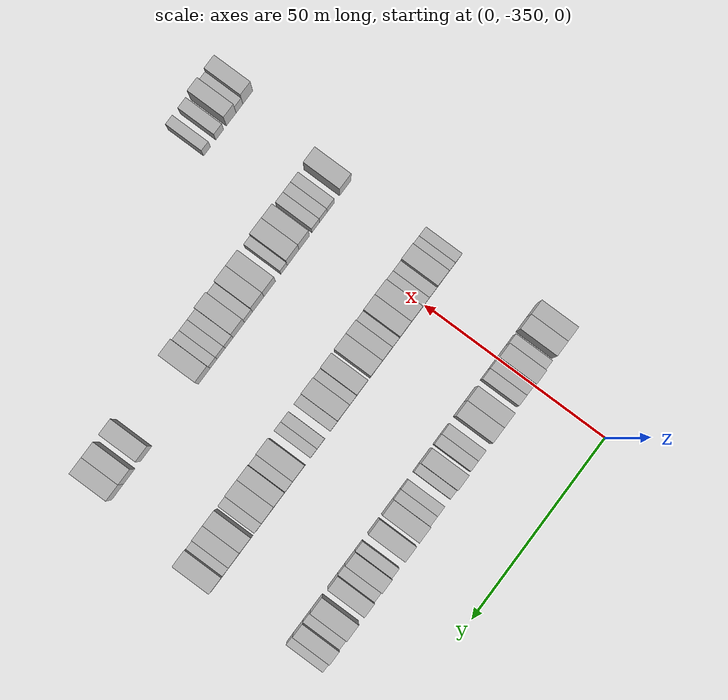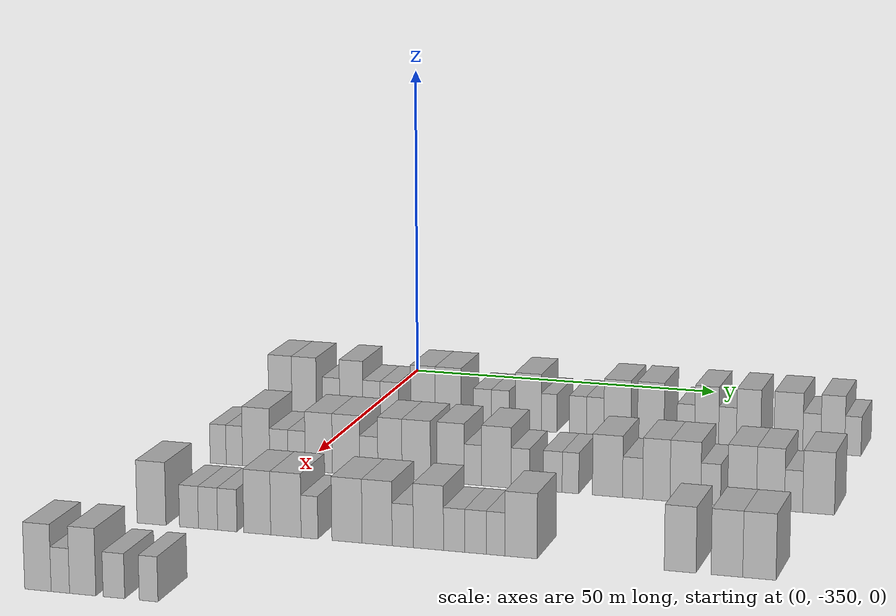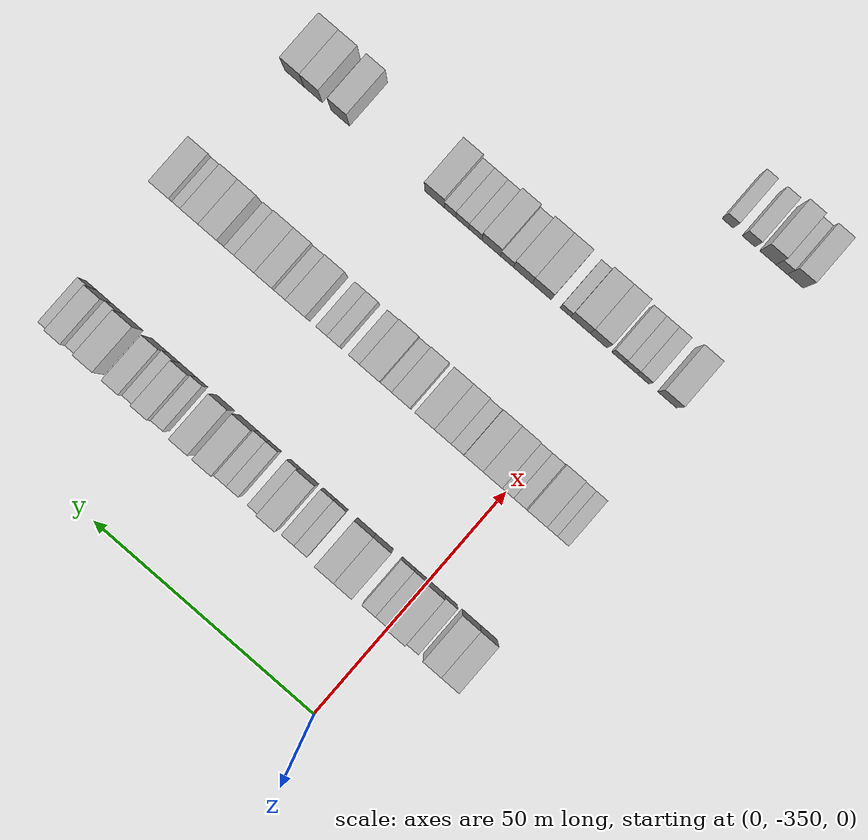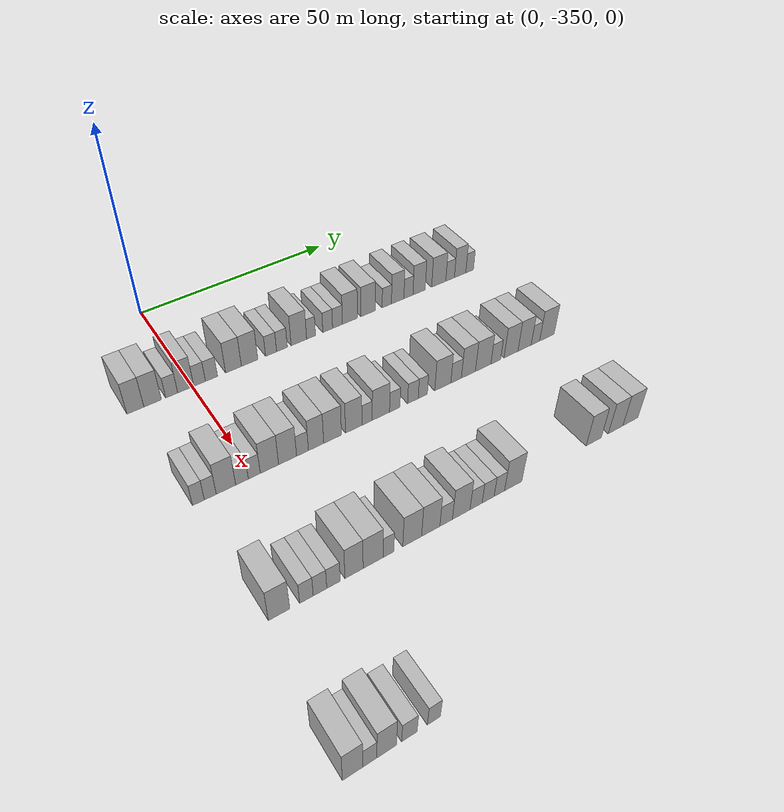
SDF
<sdf version="1.6">
 <world name="default">
  <model name="building_26">
   <static>1</static>
   <pose>25.0000 -363.3292 0 0.000000 0.000000 0.000000</pose>
   <link name="link">
    <pose>0 0 4.50 0 0 0</pose>
    <collision name="collision"><geometry><box><size>10.0000 3.8838 9.0000</size></box></geometry></collision>
    <visual name="visual">
     <cast_shadows>0</cast_shadows>
     <geometry><box><size>10.0000 3.8838 9.0000</size></box></geometry>
     <material>
      <script>
       <uri>model://HANNAS_wall/materials/scripts</uri>
       <uri>model://HANNAS_wall/materials/textures</uri>
       <name>vrc/HANNAS_wall</name>
      </script>
     </material>
    </visual>
   </link>
  </model>
  <model name="building_27">
   <static>1</static>
   <pose>25.0000 -359.3605 0 0.000000 0.000000 0.000000</pose>
   <link name="link">
    <pose>0 0 4.50 0 0 0</pose>
    <collision name="collision"><geometry><box><size>10.0000 4.0535 9.0000</size></box></geometry></collision>
    <visual name="visual">
     <cast_shadows>0</cast_shadows>
     <geometry><box><size>10.0000 4.0535 9.0000</size></box></geometry>
     <material>
      <script>
       <uri>model://HANNAS_wall/materials/scripts</uri>
       <uri>model://HANNAS_wall/materials/textures</uri>
       <name>vrc/HANNAS_wall</name>
      </script>
     </material>
    </visual>
   </link>
  </model>
  <model name="building_28">
   <static>1</static>
   <pose>25.0000 -354.9109 0 0.000000 0.000000 0.000000</pose>
   <link name="link">
    <pose>0 0 3.00 0 0 0</pose>
    <collision name="collision"><geometry><box><size>10.0000 2.8457 6.0000</size></box></geometry></collision>
    <visual name="visual">
     <cast_shadows>0</cast_shadows>
     <geometry><box><size>10.0000 2.8457 6.0000</size></box></geometry>
     <material>
      <script>
       <uri>model://HANNAS_wall/materials/scripts</uri>
       <uri>model://HANNAS_wall/materials/textures</uri>
       <name>vrc/HANNAS_wall</name>
      </script>
     </material>
    </visual>
   </link>
  </model>
  <model name="building_29">
   <static>1</static>
   <pose>25.0000 -351.5719 0 0.000000 0.000000 0.000000</pose>
   <link name="link">
    <pose>0 0 4.50 0 0 0</pose>
    <collision name="collision"><geometry><box><size>10.0000 3.8323 9.0000</size></box></geometry></collision>
    <visual name="visual">
     <cast_shadows>0</cast_shadows>
     <geometry><box><size>10.0000 3.8323 9.0000</size></box></geometry>
     <material>
      <script>
       <uri>model://HANNAS_wall/materials/scripts</uri>
       <uri>model://HANNAS_wall/materials/textures</uri>
       <name>vrc/HANNAS_wall</name>
      </script>
     </material>
    </visual>
   </link>
  </model>
  <model name="building_30">
   <static>1</static>
   <pose>25.0000 -348.2336 0 0.000000 0.000000 0.000000</pose>
   <link name="link">
    <pose>0 0 3.00 0 0 0</pose>
    <collision name="collision"><geometry><box><size>10.0000 2.8442 6.0000</size></box></geometry></collision>
    <visual name="visual">
     <cast_shadows>0</cast_shadows>
     <geometry><box><size>10.0000 2.8442 6.0000</size></box></geometry>
     <material>
      <script>
       <uri>model://HANNAS_wall/materials/scripts</uri>
       <uri>model://HANNAS_wall/materials/textures</uri>
       <name>vrc/HANNAS_wall</name>
      </script>
     </material>
    </visual>
   </link>
  </model>
  <model name="building_31">
   <static>1</static>
   <pose>25.0000 -345.3288 0 0.000000 0.000000 0.000000</pose>
   <link name="link">
    <pose>0 0 3.00 0 0 0</pose>
    <collision name="collision"><geometry><box><size>10.0000 2.9655 6.0000</size></box></geometry></collision>
    <visual name="visual">
     <cast_shadows>0</cast_shadows>
     <geometry><box><size>10.0000 2.9655 6.0000</size></box></geometry>
     <material>
      <script>
       <uri>model://HANNAS_wall/materials/scripts</uri>
       <uri>model://HANNAS_wall/materials/textures</uri>
       <name>vrc/HANNAS_wall</name>
      </script>
     </material>
    </visual>
   </link>
  </model>
  <model name="building_32">
   <static>1</static>
   <pose>25.0000 -339.8580 0 0.000000 0.000000 0.000000</pose>
   <link name="link">
    <pose>0 0 4.50 0 0 0</pose>
    <collision name="collision"><geometry><box><size>10.0000 3.9760 9.0000</size></box></geometry></collision>
    <visual name="visual">
     <cast_shadows>0</cast_shadows>
     <geometry><box><size>10.0000 3.9760 9.0000</size></box></geometry>
     <material>
      <script>
       <uri>model://HANNAS_wall/materials/scripts</uri>
       <uri>model://HANNAS_wall/materials/textures</uri>
       <name>vrc/HANNAS_wall</name>
      </script>
     </material>
    </visual>
   </link>
  </model>
  <model name="building_33">
   <static>1</static>
   <pose>25.0000 -335.7760 0 0.000000 0.000000 0.000000</pose>
   <link name="link">
    <pose>0 0 4.50 0 0 0</pose>
    <collision name="collision"><geometry><box><size>10.0000 4.1880 9.0000</size></box></geometry></collision>
    <visual name="visual">
     <cast_shadows>0</cast_shadows>
     <geometry><box><size>10.0000 4.1880 9.0000</size></box></geometry>
     <material>
      <script>
       <uri>model://HANNAS_wall/materials/scripts</uri>
       <uri>model://HANNAS_wall/materials/textures</uri>
       <name>vrc/HANNAS_wall</name>
      </script>
     </material>
    </visual>
   </link>
  </model>
  <model name="building_34">
   <static>1</static>
   <pose>25.0000 -330.2479 0 0.000000 0.000000 0.000000</pose>
   <link name="link">
    <pose>0 0 3.00 0 0 0</pose>
    <collision name="collision"><geometry><box><size>10.0000 2.8681 6.0000</size></box></geometry></collision>
    <visual name="visual">
     <cast_shadows>0</cast_shadows>
     <geometry><box><size>10.0000 2.8681 6.0000</size></box></geometry>
     <material>
      <script>
       <uri>model://HANNAS_wall/materials/scripts</uri>
       <uri>model://HANNAS_wall/materials/textures</uri>
       <name>vrc/HANNAS_wall</name>
      </script>
     </material>
    </visual>
   </link>
  </model>
  <model name="building_35">
   <static>1</static>
   <pose>25.0000 -327.3983 0 0.000000 0.000000 0.000000</pose>
   <link name="link">
    <pose>0 0 3.00 0 0 0</pose>
    <collision name="collision"><geometry><box><size>10.0000 2.8311 6.0000</size></box></geometry></collision>
    <visual name="visual">
     <cast_shadows>0</cast_shadows>
     <geometry><box><size>10.0000 2.8311 6.0000</size></box></geometry>
     <material>
      <script>
       <uri>model://HANNAS_wall/materials/scripts</uri>
       <uri>model://HANNAS_wall/materials/textures</uri>
       <name>vrc/HANNAS_wall</name>
      </script>
     </material>
    </visual>
   </link>
  </model>
  <model name="building_36">
   <static>1</static>
   <pose>25.0000 -322.9147 0 0.000000 0.000000 0.000000</pose>
   <link name="link">
    <pose>0 0 4.50 0 0 0</pose>
    <collision name="collision"><geometry><box><size>10.0000 4.1361 9.0000</size></box></geometry></collision>
    <visual name="visual">
     <cast_shadows>0</cast_shadows>
     <geometry><box><size>10.0000 4.1361 9.0000</size></box></geometry>
     <material>
      <script>
       <uri>model://HANNAS_wall/materials/scripts</uri>
       <uri>model://HANNAS_wall/materials/textures</uri>
       <name>vrc/HANNAS_wall</name>
      </script>
     </material>
    </visual>
   </link>
  </model>
  <model name="building_37">
   <static>1</static>
   <pose>25.0000 -319.6407 0 0.000000 0.000000 0.000000</pose>
   <link name="link">
    <pose>0 0 3.00 0 0 0</pose>
    <collision name="collision"><geometry><box><size>10.0000 2.4119 6.0000</size></box></geometry></collision>
    <visual name="visual">
     <cast_shadows>0</cast_shadows>
     <geometry><box><size>10.0000 2.4119 6.0000</size></box></geometry>
     <material>
      <script>
       <uri>model://HANNAS_wall/materials/scripts</uri>
       <uri>model://HANNAS_wall/materials/textures</uri>
       <name>vrc/HANNAS_wall</name>
      </script>
     </material>
    </visual>
   </link>
  </model>
  <model name="building_38">
   <static>1</static>
   <pose>25.0000 -315.0857 0 0.000000 0.000000 0.000000</pose>
   <link name="link">
    <pose>0 0 3.00 0 0 0</pose>
    <collision name="collision"><geometry><box><size>10.0000 2.6982 6.0000</size></box></geometry></collision>
    <visual name="visual">
     <cast_shadows>0</cast_shadows>
     <geometry><box><size>10.0000 2.6982 6.0000</size></box></geometry>
     <material>
      <script>
       <uri>model://HANNAS_wall/materials/scripts</uri>
       <uri>model://HANNAS_wall/materials/textures</uri>
       <name>vrc/HANNAS_wall</name>
      </script>
     </material>
    </visual>
   </link>
  </model>
  <model name="building_39">
   <static>1</static>
   <pose>25.0000 -312.3672 0 0.000000 0.000000 0.000000</pose>
   <link name="link">
    <pose>0 0 3.00 0 0 0</pose>
    <collision name="collision"><geometry><box><size>10.0000 2.7387 6.0000</size></box></geometry></collision>
    <visual name="visual">
     <cast_shadows>0</cast_shadows>
     <geometry><box><size>10.0000 2.7387 6.0000</size></box></geometry>
     <material>
      <script>
       <uri>model://HANNAS_wall/materials/scripts</uri>
       <uri>model://HANNAS_wall/materials/textures</uri>
       <name>vrc/HANNAS_wall</name>
      </script>
     </material>
    </visual>
   </link>
  </model>
  <model name="building_40">
   <static>1</static>
   <pose>25.0000 -308.8838 0 0.000000 0.000000 0.000000</pose>
   <link name="link">
    <pose>0 0 4.50 0 0 0</pose>
    <collision name="collision"><geometry><box><size>10.0000 4.2281 9.0000</size></box></geometry></collision>
    <visual name="visual">
     <cast_shadows>0</cast_shadows>
     <geometry><box><size>10.0000 4.2281 9.0000</size></box></geometry>
     <material>
      <script>
       <uri>model://HANNAS_wall/materials/scripts</uri>
       <uri>model://HANNAS_wall/materials/textures</uri>
       <name>vrc/HANNAS_wall</name>
      </script>
     </material>
    </visual>
   </link>
  </model>
  <model name="building_41">
   <static>1</static>
   <pose>25.0000 -303.7014 0 0.000000 0.000000 0.000000</pose>
   <link name="link">
    <pose>0 0 4.50 0 0 0</pose>
    <collision name="collision"><geometry><box><size>10.0000 4.1366 9.0000</size></box></geometry></collision>
    <visual name="visual">
     <cast_shadows>0</cast_shadows>
     <geometry><box><size>10.0000 4.1366 9.0000</size></box></geometry>
     <material>
      <script>
       <uri>model://HANNAS_wall/materials/scripts</uri>
       <uri>model://HANNAS_wall/materials/textures</uri>
       <name>vrc/HANNAS_wall</name>
      </script>
     </material>
    </visual>
   </link>
  </model>
  <model name="building_42">
   <static>1</static>
   <pose>25.0000 -298.2749 0 0.000000 0.000000 0.000000</pose>
   <link name="link">
    <pose>0 0 3.00 0 0 0</pose>
    <collision name="collision"><geometry><box><size>10.0000 2.7165 6.0000</size></box></geometry></collision>
    <visual name="visual">
     <cast_shadows>0</cast_shadows>
     <geometry><box><size>10.0000 2.7165 6.0000</size></box></geometry>
     <material>
      <script>
       <uri>model://HANNAS_wall/materials/scripts</uri>
       <uri>model://HANNAS_wall/materials/textures</uri>
       <name>vrc/HANNAS_wall</name>
      </script>
     </material>
    </visual>
   </link>
  </model>
  <model name="building_43">
   <static>1</static>
   <pose>25.0000 -295.0676 0 0.000000 0.000000 0.000000</pose>
   <link name="link">
    <pose>0 0 4.50 0 0 0</pose>
    <collision name="collision"><geometry><box><size>10.0000 3.6980 9.0000</size></box></geometry></collision>
    <visual name="visual">
     <cast_shadows>0</cast_shadows>
     <geometry><box><size>10.0000 3.6980 9.0000</size></box></geometry>
     <material>
      <script>
       <uri>model://HANNAS_wall/materials/scripts</uri>
       <uri>model://HANNAS_wall/materials/textures</uri>
       <name>vrc/HANNAS_wall</name>
      </script>
     </material>
    </visual>
   </link>
  </model>
  <model name="building_44">
   <static>1</static>
   <pose>25.0000 -291.8592 0 0.000000 0.000000 0.000000</pose>
   <link name="link">
    <pose>0 0 3.00 0 0 0</pose>
    <collision name="collision"><geometry><box><size>10.0000 2.7188 6.0000</size></box></geometry></collision>
    <visual name="visual">
     <cast_shadows>0</cast_shadows>
     <geometry><box><size>10.0000 2.7188 6.0000</size></box></geometry>
     <material>
      <script>
       <uri>model://HANNAS_wall/materials/scripts</uri>
       <uri>model://HANNAS_wall/materials/textures</uri>
       <name>vrc/HANNAS_wall</name>
      </script>
     </material>
    </visual>
   </link>
  </model>
  <model name="building_45">
   <static>1</static>
   <pose>25.0000 -288.6436 0 0.000000 0.000000 0.000000</pose>
   <link name="link">
    <pose>0 0 4.50 0 0 0</pose>
    <collision name="collision"><geometry><box><size>10.0000 3.7125 9.0000</size></box></geometry></collision>
    <visual name="visual">
     <cast_shadows>0</cast_shadows>
     <geometry><box><size>10.0000 3.7125 9.0000</size></box></geometry>
     <material>
      <script>
       <uri>model://HANNAS_wall/materials/scripts</uri>
       <uri>model://HANNAS_wall/materials/textures</uri>
       <name>vrc/HANNAS_wall</name>
      </script>
     </material>
    </visual>
   </link>
  </model>
  <model name="building_46">
   <static>1</static>
   <pose>25.0000 -282.5983 0 0.000000 0.000000 0.000000</pose>
   <link name="link">
    <pose>0 0 4.50 0 0 0</pose>
    <collision name="collision"><geometry><box><size>10.0000 4.3780 9.0000</size></box></geometry></collision>
    <visual name="visual">
     <cast_shadows>0</cast_shadows>
     <geometry><box><size>10.0000 4.3780 9.0000</size></box></geometry>
     <material>
      <script>
       <uri>model://HANNAS_wall/materials/scripts</uri>
       <uri>model://HANNAS_wall/materials/textures</uri>
       <name>vrc/HANNAS_wall</name>
      </script>
     </material>
    </visual>
   </link>
  </model>
  <model name="building_47">
   <static>1</static>
   <pose>25.0000 -279.0557 0 0.000000 0.000000 0.000000</pose>
   <link name="link">
    <pose>0 0 3.00 0 0 0</pose>
    <collision name="collision"><geometry><box><size>10.0000 2.7072 6.0000</size></box></geometry></collision>
    <visual name="visual">
     <cast_shadows>0</cast_shadows>
     <geometry><box><size>10.0000 2.7072 6.0000</size></box></geometry>
     <material>
      <script>
       <uri>model://HANNAS_wall/materials/scripts</uri>
       <uri>model://HANNAS_wall/materials/textures</uri>
       <name>vrc/HANNAS_wall</name>
      </script>
     </material>
    </visual>
   </link>
  </model>
  <model name="building_48">
   <static>1</static>
   <pose>25.0000 -275.8993 0 0.000000 0.000000 0.000000</pose>
   <link name="link">
    <pose>0 0 4.50 0 0 0</pose>
    <collision name="collision"><geometry><box><size>10.0000 3.6057 9.0000</size></box></geometry></collision>
    <visual name="visual">
     <cast_shadows>0</cast_shadows>
     <geometry><box><size>10.0000 3.6057 9.0000</size></box></geometry>
     <material>
      <script>
       <uri>model://HANNAS_wall/materials/scripts</uri>
       <uri>model://HANNAS_wall/materials/textures</uri>
       <name>vrc/HANNAS_wall</name>
      </script>
     </material>
    </visual>
   </link>
  </model>
  <model name="building_49">
   <static>1</static>
   <pose>25.0000 -272.8682 0 0.000000 0.000000 0.000000</pose>
   <link name="link">
    <pose>0 0 3.00 0 0 0</pose>
    <collision name="collision"><geometry><box><size>10.0000 2.4565 6.0000</size></box></geometry></collision>
    <visual name="visual">
     <cast_shadows>0</cast_shadows>
     <geometry><box><size>10.0000 2.4565 6.0000</size></box></geometry>
     <material>
      <script>
       <uri>model://HANNAS_wall/materials/scripts</uri>
       <uri>model://HANNAS_wall/materials/textures</uri>
       <name>vrc/HANNAS_wall</name>
      </script>
     </material>
    </visual>
   </link>
  </model>
  <model name="building_250">
   <static>1</static>
   <pose>55.0000 -362.2502 0 0.000000 0.000000 0.000000</pose>
   <link name="link">
    <pose>0 0 3.00 0 0 0</pose>
    <collision name="collision"><geometry><box><size>10.0000 2.5259 6.0000</size></box></geometry></collision>
    <visual name="visual">
     <cast_shadows>0</cast_shadows>
     <geometry><box><size>10.0000 2.5259 6.0000</size></box></geometry>
     <material>
      <script>
       <uri>model://HANNAS_wall/materials/scripts</uri>
       <uri>model://HANNAS_wall/materials/textures</uri>
       <name>vrc/HANNAS_wall</name>
      </script>
     </material>
    </visual>
   </link>
  </model>
  <model name="building_251">
   <static>1</static>
   <pose>55.0000 -359.7041 0 0.000000 0.000000 0.000000</pose>
   <link name="link">
    <pose>0 0 3.00 0 0 0</pose>
    <collision name="collision"><geometry><box><size>10.0000 2.5663 6.0000</size></box></geometry></collision>
    <visual name="visual">
     <cast_shadows>0</cast_shadows>
     <geometry><box><size>10.0000 2.5663 6.0000</size></box></geometry>
     <material>
      <script>
       <uri>model://HANNAS_wall/materials/scripts</uri>
       <uri>model://HANNAS_wall/materials/textures</uri>
       <name>vrc/HANNAS_wall</name>
      </script>
     </material>
    </visual>
   </link>
  </model>
  <model name="building_252">
   <static>1</static>
   <pose>55.0000 -356.2911 0 0.000000 0.000000 0.000000</pose>
   <link name="link">
    <pose>0 0 4.50 0 0 0</pose>
    <collision name="collision"><geometry><box><size>10.0000 4.2596 9.0000</size></box></geometry></collision>
    <visual name="visual">
     <cast_shadows>0</cast_shadows>
     <geometry><box><size>10.0000 4.2596 9.0000</size></box></geometry>
     <material>
      <script>
       <uri>model://HANNAS_wall/materials/scripts</uri>
       <uri>model://HANNAS_wall/materials/textures</uri>
       <name>vrc/HANNAS_wall</name>
      </script>
     </material>
    </visual>
   </link>
  </model>
  <model name="building_253">
   <static>1</static>
   <pose>55.0000 -352.7507 0 0.000000 0.000000 0.000000</pose>
   <link name="link">
    <pose>0 0 3.00 0 0 0</pose>
    <collision name="collision"><geometry><box><size>10.0000 2.8212 6.0000</size></box></geometry></collision>
    <visual name="visual">
     <cast_shadows>0</cast_shadows>
     <geometry><box><size>10.0000 2.8212 6.0000</size></box></geometry>
     <material>
      <script>
       <uri>model://HANNAS_wall/materials/scripts</uri>
       <uri>model://HANNAS_wall/materials/textures</uri>
       <name>vrc/HANNAS_wall</name>
      </script>
     </material>
    </visual>
   </link>
  </model>
  <model name="building_254">
   <static>1</static>
   <pose>55.0000 -349.9970 0 0.000000 0.000000 0.000000</pose>
   <link name="link">
    <pose>0 0 3.00 0 0 0</pose>
    <collision name="collision"><geometry><box><size>10.0000 2.6863 6.0000</size></box></geometry></collision>
    <visual name="visual">
     <cast_shadows>0</cast_shadows>
     <geometry><box><size>10.0000 2.6863 6.0000</size></box></geometry>
     <material>
      <script>
       <uri>model://HANNAS_wall/materials/scripts</uri>
       <uri>model://HANNAS_wall/materials/textures</uri>
       <name>vrc/HANNAS_wall</name>
      </script>
     </material>
    </visual>
   </link>
  </model>
  <model name="building_255">
   <static>1</static>
   <pose>55.0000 -346.5590 0 0.000000 0.000000 0.000000</pose>
   <link name="link">
    <pose>0 0 4.50 0 0 0</pose>
    <collision name="collision"><geometry><box><size>10.0000 4.1896 9.0000</size></box></geometry></collision>
    <visual name="visual">
     <cast_shadows>0</cast_shadows>
     <geometry><box><size>10.0000 4.1896 9.0000</size></box></geometry>
     <material>
      <script>
       <uri>model://HANNAS_wall/materials/scripts</uri>
       <uri>model://HANNAS_wall/materials/textures</uri>
       <name>vrc/HANNAS_wall</name>
      </script>
     </material>
    </visual>
   </link>
  </model>
  <model name="building_256">
   <static>1</static>
   <pose>55.0000 -342.3733 0 0.000000 0.000000 0.000000</pose>
   <link name="link">
    <pose>0 0 4.50 0 0 0</pose>
    <collision name="collision"><geometry><box><size>10.0000 4.1818 9.0000</size></box></geometry></collision>
    <visual name="visual">
     <cast_shadows>0</cast_shadows>
     <geometry><box><size>10.0000 4.1818 9.0000</size></box></geometry>
     <material>
      <script>
       <uri>model://HANNAS_wall/materials/scripts</uri>
       <uri>model://HANNAS_wall/materials/textures</uri>
       <name>vrc/HANNAS_wall</name>
      </script>
     </material>
    </visual>
   </link>
  </model>
  <model name="building_257">
   <static>1</static>
   <pose>55.0000 -338.8867 0 0.000000 0.000000 0.000000</pose>
   <link name="link">
    <pose>0 0 3.00 0 0 0</pose>
    <collision name="collision"><geometry><box><size>10.0000 2.7914 6.0000</size></box></geometry></collision>
    <visual name="visual">
     <cast_shadows>0</cast_shadows>
     <geometry><box><size>10.0000 2.7914 6.0000</size></box></geometry>
     <material>
      <script>
       <uri>model://HANNAS_wall/materials/scripts</uri>
       <uri>model://HANNAS_wall/materials/textures</uri>
       <name>vrc/HANNAS_wall</name>
      </script>
     </material>
    </visual>
   </link>
  </model>
  <model name="building_258">
   <static>1</static>
   <pose>55.0000 -335.6544 0 0.000000 0.000000 0.000000</pose>
   <link name="link">
    <pose>0 0 4.50 0 0 0</pose>
    <collision name="collision"><geometry><box><size>10.0000 3.6732 9.0000</size></box></geometry></collision>
    <visual name="visual">
     <cast_shadows>0</cast_shadows>
     <geometry><box><size>10.0000 3.6732 9.0000</size></box></geometry>
     <material>
      <script>
       <uri>model://HANNAS_wall/materials/scripts</uri>
       <uri>model://HANNAS_wall/materials/textures</uri>
       <name>vrc/HANNAS_wall</name>
      </script>
     </material>
    </visual>
   </link>
  </model>
  <model name="building_259">
   <static>1</static>
   <pose>55.0000 -331.6595 0 0.000000 0.000000 0.000000</pose>
   <link name="link">
    <pose>0 0 4.50 0 0 0</pose>
    <collision name="collision"><geometry><box><size>10.0000 4.3166 9.0000</size></box></geometry></collision>
    <visual name="visual">
     <cast_shadows>0</cast_shadows>
     <geometry><box><size>10.0000 4.3166 9.0000</size></box></geometry>
     <material>
      <script>
       <uri>model://HANNAS_wall/materials/scripts</uri>
       <uri>model://HANNAS_wall/materials/textures</uri>
       <name>vrc/HANNAS_wall</name>
      </script>
     </material>
    </visual>
   </link>
  </model>
  <model name="building_260">
   <static>1</static>
   <pose>55.0000 -326.4647 0 0.000000 0.000000 0.000000</pose>
   <link name="link">
    <pose>0 0 4.50 0 0 0</pose>
    <collision name="collision"><geometry><box><size>10.0000 4.0730 9.0000</size></box></geometry></collision>
    <visual name="visual">
     <cast_shadows>0</cast_shadows>
     <geometry><box><size>10.0000 4.0730 9.0000</size></box></geometry>
     <material>
      <script>
       <uri>model://HANNAS_wall/materials/scripts</uri>
       <uri>model://HANNAS_wall/materials/textures</uri>
       <name>vrc/HANNAS_wall</name>
      </script>
     </material>
    </visual>
   </link>
  </model>
  <model name="building_261">
   <static>1</static>
   <pose>55.0000 -323.1159 0 0.000000 0.000000 0.000000</pose>
   <link name="link">
    <pose>0 0 3.00 0 0 0</pose>
    <collision name="collision"><geometry><box><size>10.0000 2.6246 6.0000</size></box></geometry></collision>
    <visual name="visual">
     <cast_shadows>0</cast_shadows>
     <geometry><box><size>10.0000 2.6246 6.0000</size></box></geometry>
     <material>
      <script>
       <uri>model://HANNAS_wall/materials/scripts</uri>
       <uri>model://HANNAS_wall/materials/textures</uri>
       <name>vrc/HANNAS_wall</name>
      </script>
     </material>
    </visual>
   </link>
  </model>
  <model name="building_262">
   <static>1</static>
   <pose>55.0000 -319.5897 0 0.000000 0.000000 0.000000</pose>
   <link name="link">
    <pose>0 0 4.50 0 0 0</pose>
    <collision name="collision"><geometry><box><size>10.0000 4.4278 9.0000</size></box></geometry></collision>
    <visual name="visual">
     <cast_shadows>0</cast_shadows>
     <geometry><box><size>10.0000 4.4278 9.0000</size></box></geometry>
     <material>
      <script>
       <uri>model://HANNAS_wall/materials/scripts</uri>
       <uri>model://HANNAS_wall/materials/textures</uri>
       <name>vrc/HANNAS_wall</name>
      </script>
     </material>
    </visual>
   </link>
  </model>
  <model name="building_263">
   <static>1</static>
   <pose>55.0000 -316.0207 0 0.000000 0.000000 0.000000</pose>
   <link name="link">
    <pose>0 0 3.00 0 0 0</pose>
    <collision name="collision"><geometry><box><size>10.0000 2.7102 6.0000</size></box></geometry></collision>
    <visual name="visual">
     <cast_shadows>0</cast_shadows>
     <geometry><box><size>10.0000 2.7102 6.0000</size></box></geometry>
     <material>
      <script>
       <uri>model://HANNAS_wall/materials/scripts</uri>
       <uri>model://HANNAS_wall/materials/textures</uri>
       <name>vrc/HANNAS_wall</name>
      </script>
     </material>
    </visual>
   </link>
  </model>
  <model name="building_264">
   <static>1</static>
   <pose>55.0000 -311.2551 0 0.000000 0.000000 0.000000</pose>
   <link name="link">
    <pose>0 0 3.00 0 0 0</pose>
    <collision name="collision"><geometry><box><size>10.0000 2.8209 6.0000</size></box></geometry></collision>
    <visual name="visual">
     <cast_shadows>0</cast_shadows>
     <geometry><box><size>10.0000 2.8209 6.0000</size></box></geometry>
     <material>
      <script>
       <uri>model://HANNAS_wall/materials/scripts</uri>
       <uri>model://HANNAS_wall/materials/textures</uri>
       <name>vrc/HANNAS_wall</name>
      </script>
     </material>
    </visual>
   </link>
  </model>
  <model name="building_265">
   <static>1</static>
   <pose>55.0000 -308.6192 0 0.000000 0.000000 0.000000</pose>
   <link name="link">
    <pose>0 0 3.00 0 0 0</pose>
    <collision name="collision"><geometry><box><size>10.0000 2.4509 6.0000</size></box></geometry></collision>
    <visual name="visual">
     <cast_shadows>0</cast_shadows>
     <geometry><box><size>10.0000 2.4509 6.0000</size></box></geometry>
     <material>
      <script>
       <uri>model://HANNAS_wall/materials/scripts</uri>
       <uri>model://HANNAS_wall/materials/textures</uri>
       <name>vrc/HANNAS_wall</name>
      </script>
     </material>
    </visual>
   </link>
  </model>
  <model name="building_266">
   <static>1</static>
   <pose>55.0000 -303.1925 0 0.000000 0.000000 0.000000</pose>
   <link name="link">
    <pose>0 0 4.50 0 0 0</pose>
    <collision name="collision"><geometry><box><size>10.0000 4.4025 9.0000</size></box></geometry></collision>
    <visual name="visual">
     <cast_shadows>0</cast_shadows>
     <geometry><box><size>10.0000 4.4025 9.0000</size></box></geometry>
     <material>
      <script>
       <uri>model://HANNAS_wall/materials/scripts</uri>
       <uri>model://HANNAS_wall/materials/textures</uri>
       <name>vrc/HANNAS_wall</name>
      </script>
     </material>
    </visual>
   </link>
  </model>
  <model name="building_267">
   <static>1</static>
   <pose>55.0000 -299.5221 0 0.000000 0.000000 0.000000</pose>
   <link name="link">
    <pose>0 0 3.00 0 0 0</pose>
    <collision name="collision"><geometry><box><size>10.0000 2.9384 6.0000</size></box></geometry></collision>
    <visual name="visual">
     <cast_shadows>0</cast_shadows>
     <geometry><box><size>10.0000 2.9384 6.0000</size></box></geometry>
     <material>
      <script>
       <uri>model://HANNAS_wall/materials/scripts</uri>
       <uri>model://HANNAS_wall/materials/textures</uri>
       <name>vrc/HANNAS_wall</name>
      </script>
     </material>
    </visual>
   </link>
  </model>
  <model name="building_268">
   <static>1</static>
   <pose>55.0000 -296.0780 0 0.000000 0.000000 0.000000</pose>
   <link name="link">
    <pose>0 0 4.50 0 0 0</pose>
    <collision name="collision"><geometry><box><size>10.0000 3.9498 9.0000</size></box></geometry></collision>
    <visual name="visual">
     <cast_shadows>0</cast_shadows>
     <geometry><box><size>10.0000 3.9498 9.0000</size></box></geometry>
     <material>
      <script>
       <uri>model://HANNAS_wall/materials/scripts</uri>
       <uri>model://HANNAS_wall/materials/textures</uri>
       <name>vrc/HANNAS_wall</name>
      </script>
     </material>
    </visual>
   </link>
  </model>
  <model name="building_269">
   <static>1</static>
   <pose>55.0000 -291.8890 0 0.000000 0.000000 0.000000</pose>
   <link name="link">
    <pose>0 0 4.50 0 0 0</pose>
    <collision name="collision"><geometry><box><size>10.0000 4.4281 9.0000</size></box></geometry></collision>
    <visual name="visual">
     <cast_shadows>0</cast_shadows>
     <geometry><box><size>10.0000 4.4281 9.0000</size></box></geometry>
     <material>
      <script>
       <uri>model://HANNAS_wall/materials/scripts</uri>
       <uri>model://HANNAS_wall/materials/textures</uri>
       <name>vrc/HANNAS_wall</name>
      </script>
     </material>
    </visual>
   </link>
  </model>
  <model name="building_270">
   <static>1</static>
   <pose>55.0000 -288.2566 0 0.000000 0.000000 0.000000</pose>
   <link name="link">
    <pose>0 0 3.00 0 0 0</pose>
    <collision name="collision"><geometry><box><size>10.0000 2.8367 6.0000</size></box></geometry></collision>
    <visual name="visual">
     <cast_shadows>0</cast_shadows>
     <geometry><box><size>10.0000 2.8367 6.0000</size></box></geometry>
     <material>
      <script>
       <uri>model://HANNAS_wall/materials/scripts</uri>
       <uri>model://HANNAS_wall/materials/textures</uri>
       <name>vrc/HANNAS_wall</name>
      </script>
     </material>
    </visual>
   </link>
  </model>
  <model name="building_271">
   <static>1</static>
   <pose>55.0000 -283.7793 0 0.000000 0.000000 0.000000</pose>
   <link name="link">
    <pose>0 0 4.50 0 0 0</pose>
    <collision name="collision"><geometry><box><size>10.0000 4.1179 9.0000</size></box></geometry></collision>
    <visual name="visual">
     <cast_shadows>0</cast_shadows>
     <geometry><box><size>10.0000 4.1179 9.0000</size></box></geometry>
     <material>
      <script>
       <uri>model://HANNAS_wall/materials/scripts</uri>
       <uri>model://HANNAS_wall/materials/textures</uri>
       <name>vrc/HANNAS_wall</name>
      </script>
     </material>
    </visual>
   </link>
  </model>
  <model name="building_272">
   <static>1</static>
   <pose>55.0000 -279.7332 0 0.000000 0.000000 0.000000</pose>
   <link name="link">
    <pose>0 0 4.50 0 0 0</pose>
    <collision name="collision"><geometry><box><size>10.0000 3.9741 9.0000</size></box></geometry></collision>
    <visual name="visual">
     <cast_shadows>0</cast_shadows>
     <geometry><box><size>10.0000 3.9741 9.0000</size></box></geometry>
     <material>
      <script>
       <uri>model://HANNAS_wall/materials/scripts</uri>
       <uri>model://HANNAS_wall/materials/textures</uri>
       <name>vrc/HANNAS_wall</name>
      </script>
     </material>
    </visual>
   </link>
  </model>
  <model name="building_273">
   <static>1</static>
   <pose>55.0000 -276.4646 0 0.000000 0.000000 0.000000</pose>
   <link name="link">
    <pose>0 0 3.00 0 0 0</pose>
    <collision name="collision"><geometry><box><size>10.0000 2.5632 6.0000</size></box></geometry></collision>
    <visual name="visual">
     <cast_shadows>0</cast_shadows>
     <geometry><box><size>10.0000 2.5632 6.0000</size></box></geometry>
     <material>
      <script>
       <uri>model://HANNAS_wall/materials/scripts</uri>
       <uri>model://HANNAS_wall/materials/textures</uri>
       <name>vrc/HANNAS_wall</name>
      </script>
     </material>
    </visual>
   </link>
  </model>
  <model name="building_274">
   <static>1</static>
   <pose>55.0000 -272.9430 0 0.000000 0.000000 0.000000</pose>
   <link name="link">
    <pose>0 0 4.50 0 0 0</pose>
    <collision name="collision"><geometry><box><size>10.0000 4.4800 9.0000</size></box></geometry></collision>
    <visual name="visual">
     <cast_shadows>0</cast_shadows>
     <geometry><box><size>10.0000 4.4800 9.0000</size></box></geometry>
     <material>
      <script>
       <uri>model://HANNAS_wall/materials/scripts</uri>
       <uri>model://HANNAS_wall/materials/textures</uri>
       <name>vrc/HANNAS_wall</name>
      </script>
     </material>
    </visual>
   </link>
  </model>
  <model name="building_478">
   <static>1</static>
   <pose>85.0000 -360.5537 0 0.000000 0.000000 0.000000</pose>
   <link name="link">
    <pose>0 0 4.50 0 0 0</pose>
    <collision name="collision"><geometry><box><size>10.0000 4.2747 9.0000</size></box></geometry></collision>
    <visual name="visual">
     <cast_shadows>0</cast_shadows>
     <geometry><box><size>10.0000 4.2747 9.0000</size></box></geometry>
     <material>
      <script>
       <uri>model://HANNAS_wall/materials/scripts</uri>
       <uri>model://HANNAS_wall/materials/textures</uri>
       <name>vrc/HANNAS_wall</name>
      </script>
     </material>
    </visual>
   </link>
  </model>
  <model name="building_479">
   <static>1</static>
   <pose>85.0000 -355.0271 0 0.000000 0.000000 0.000000</pose>
   <link name="link">
    <pose>0 0 3.00 0 0 0</pose>
    <collision name="collision"><geometry><box><size>10.0000 2.7785 6.0000</size></box></geometry></collision>
    <visual name="visual">
     <cast_shadows>0</cast_shadows>
     <geometry><box><size>10.0000 2.7785 6.0000</size></box></geometry>
     <material>
      <script>
       <uri>model://HANNAS_wall/materials/scripts</uri>
       <uri>model://HANNAS_wall/materials/textures</uri>
       <name>vrc/HANNAS_wall</name>
      </script>
     </material>
    </visual>
   </link>
  </model>
  <model name="building_480">
   <static>1</static>
   <pose>85.0000 -352.2359 0 0.000000 0.000000 0.000000</pose>
   <link name="link">
    <pose>0 0 3.00 0 0 0</pose>
    <collision name="collision"><geometry><box><size>10.0000 2.8039 6.0000</size></box></geometry></collision>
    <visual name="visual">
     <cast_shadows>0</cast_shadows>
     <geometry><box><size>10.0000 2.8039 6.0000</size></box></geometry>
     <material>
      <script>
       <uri>model://HANNAS_wall/materials/scripts</uri>
       <uri>model://HANNAS_wall/materials/textures</uri>
       <name>vrc/HANNAS_wall</name>
      </script>
     </material>
    </visual>
   </link>
  </model>
  <model name="building_481">
   <static>1</static>
   <pose>85.0000 -349.4204 0 0.000000 0.000000 0.000000</pose>
   <link name="link">
    <pose>0 0 3.00 0 0 0</pose>
    <collision name="collision"><geometry><box><size>10.0000 2.8273 6.0000</size></box></geometry></collision>
    <visual name="visual">
     <cast_shadows>0</cast_shadows>
     <geometry><box><size>10.0000 2.8273 6.0000</size></box></geometry>
     <material>
      <script>
       <uri>model://HANNAS_wall/materials/scripts</uri>
       <uri>model://HANNAS_wall/materials/textures</uri>
       <name>vrc/HANNAS_wall</name>
      </script>
     </material>
    </visual>
   </link>
  </model>
  <model name="building_482">
   <static>1</static>
   <pose>85.0000 -345.0548 0 0.000000 0.000000 0.000000</pose>
   <link name="link">
    <pose>0 0 4.50 0 0 0</pose>
    <collision name="collision"><geometry><box><size>10.0000 3.9038 9.0000</size></box></geometry></collision>
    <visual name="visual">
     <cast_shadows>0</cast_shadows>
     <geometry><box><size>10.0000 3.9038 9.0000</size></box></geometry>
     <material>
      <script>
       <uri>model://HANNAS_wall/materials/scripts</uri>
       <uri>model://HANNAS_wall/materials/textures</uri>
       <name>vrc/HANNAS_wall</name>
      </script>
     </material>
    </visual>
   </link>
  </model>
  <model name="building_483">
   <static>1</static>
   <pose>85.0000 -340.9134 0 0.000000 0.000000 0.000000</pose>
   <link name="link">
    <pose>0 0 4.50 0 0 0</pose>
    <collision name="collision"><geometry><box><size>10.0000 4.3790 9.0000</size></box></geometry></collision>
    <visual name="visual">
     <cast_shadows>0</cast_shadows>
     <geometry><box><size>10.0000 4.3790 9.0000</size></box></geometry>
     <material>
      <script>
       <uri>model://HANNAS_wall/materials/scripts</uri>
       <uri>model://HANNAS_wall/materials/textures</uri>
       <name>vrc/HANNAS_wall</name>
      </script>
     </material>
    </visual>
   </link>
  </model>
  <model name="building_484">
   <static>1</static>
   <pose>85.0000 -337.5185 0 0.000000 0.000000 0.000000</pose>
   <link name="link">
    <pose>0 0 3.00 0 0 0</pose>
    <collision name="collision"><geometry><box><size>10.0000 2.4109 6.0000</size></box></geometry></collision>
    <visual name="visual">
     <cast_shadows>0</cast_shadows>
     <geometry><box><size>10.0000 2.4109 6.0000</size></box></geometry>
     <material>
      <script>
       <uri>model://HANNAS_wall/materials/scripts</uri>
       <uri>model://HANNAS_wall/materials/textures</uri>
       <name>vrc/HANNAS_wall</name>
      </script>
     </material>
    </visual>
   </link>
  </model>
  <model name="building_485">
   <static>1</static>
   <pose>85.0000 -332.1631 0 0.000000 0.000000 0.000000</pose>
   <link name="link">
    <pose>0 0 4.50 0 0 0</pose>
    <collision name="collision"><geometry><box><size>10.0000 4.2999 9.0000</size></box></geometry></collision>
    <visual name="visual">
     <cast_shadows>0</cast_shadows>
     <geometry><box><size>10.0000 4.2999 9.0000</size></box></geometry>
     <material>
      <script>
       <uri>model://HANNAS_wall/materials/scripts</uri>
       <uri>model://HANNAS_wall/materials/textures</uri>
       <name>vrc/HANNAS_wall</name>
      </script>
     </material>
    </visual>
   </link>
  </model>
  <model name="building_486">
   <static>1</static>
   <pose>85.0000 -327.8837 0 0.000000 0.000000 0.000000</pose>
   <link name="link">
    <pose>0 0 4.50 0 0 0</pose>
    <collision name="collision"><geometry><box><size>10.0000 4.2588 9.0000</size></box></geometry></collision>
    <visual name="visual">
     <cast_shadows>0</cast_shadows>
     <geometry><box><size>10.0000 4.2588 9.0000</size></box></geometry>
     <material>
      <script>
       <uri>model://HANNAS_wall/materials/scripts</uri>
       <uri>model://HANNAS_wall/materials/textures</uri>
       <name>vrc/HANNAS_wall</name>
      </script>
     </material>
    </visual>
   </link>
  </model>
  <model name="building_487">
   <static>1</static>
   <pose>85.0000 -324.2665 0 0.000000 0.000000 0.000000</pose>
   <link name="link">
    <pose>0 0 3.00 0 0 0</pose>
    <collision name="collision"><geometry><box><size>10.0000 2.9755 6.0000</size></box></geometry></collision>
    <visual name="visual">
     <cast_shadows>0</cast_shadows>
     <geometry><box><size>10.0000 2.9755 6.0000</size></box></geometry>
     <material>
      <script>
       <uri>model://HANNAS_wall/materials/scripts</uri>
       <uri>model://HANNAS_wall/materials/textures</uri>
       <name>vrc/HANNAS_wall</name>
      </script>
     </material>
    </visual>
   </link>
  </model>
  <model name="building_488">
   <static>1</static>
   <pose>85.0000 -320.6574 0 0.000000 0.000000 0.000000</pose>
   <link name="link">
    <pose>0 0 4.50 0 0 0</pose>
    <collision name="collision"><geometry><box><size>10.0000 4.2427 9.0000</size></box></geometry></collision>
    <visual name="visual">
     <cast_shadows>0</cast_shadows>
     <geometry><box><size>10.0000 4.2427 9.0000</size></box></geometry>
     <material>
      <script>
       <uri>model://HANNAS_wall/materials/scripts</uri>
       <uri>model://HANNAS_wall/materials/textures</uri>
       <name>vrc/HANNAS_wall</name>
      </script>
     </material>
    </visual>
   </link>
  </model>
  <model name="building_489">
   <static>1</static>
   <pose>85.0000 -317.0554 0 0.000000 0.000000 0.000000</pose>
   <link name="link">
    <pose>0 0 3.00 0 0 0</pose>
    <collision name="collision"><geometry><box><size>10.0000 2.9614 6.0000</size></box></geometry></collision>
    <visual name="visual">
     <cast_shadows>0</cast_shadows>
     <geometry><box><size>10.0000 2.9614 6.0000</size></box></geometry>
     <material>
      <script>
       <uri>model://HANNAS_wall/materials/scripts</uri>
       <uri>model://HANNAS_wall/materials/textures</uri>
       <name>vrc/HANNAS_wall</name>
      </script>
     </material>
    </visual>
   </link>
  </model>
  <model name="building_490">
   <static>1</static>
   <pose>85.0000 -314.0819 0 0.000000 0.000000 0.000000</pose>
   <link name="link">
    <pose>0 0 3.00 0 0 0</pose>
    <collision name="collision"><geometry><box><size>10.0000 2.9856 6.0000</size></box></geometry></collision>
    <visual name="visual">
     <cast_shadows>0</cast_shadows>
     <geometry><box><size>10.0000 2.9856 6.0000</size></box></geometry>
     <material>
      <script>
       <uri>model://HANNAS_wall/materials/scripts</uri>
       <uri>model://HANNAS_wall/materials/textures</uri>
       <name>vrc/HANNAS_wall</name>
      </script>
     </material>
    </visual>
   </link>
  </model>
  <model name="building_491">
   <static>1</static>
   <pose>85.0000 -311.2799 0 0.000000 0.000000 0.000000</pose>
   <link name="link">
    <pose>0 0 3.00 0 0 0</pose>
    <collision name="collision"><geometry><box><size>10.0000 2.6183 6.0000</size></box></geometry></collision>
    <visual name="visual">
     <cast_shadows>0</cast_shadows>
     <geometry><box><size>10.0000 2.6183 6.0000</size></box></geometry>
     <material>
      <script>
       <uri>model://HANNAS_wall/materials/scripts</uri>
       <uri>model://HANNAS_wall/materials/textures</uri>
       <name>vrc/HANNAS_wall</name>
      </script>
     </material>
    </visual>
   </link>
  </model>
  <model name="building_492">
   <static>1</static>
   <pose>85.0000 -307.7514 0 0.000000 0.000000 0.000000</pose>
   <link name="link">
    <pose>0 0 4.50 0 0 0</pose>
    <collision name="collision"><geometry><box><size>10.0000 4.4386 9.0000</size></box></geometry></collision>
    <visual name="visual">
     <cast_shadows>0</cast_shadows>
     <geometry><box><size>10.0000 4.4386 9.0000</size></box></geometry>
     <material>
      <script>
       <uri>model://HANNAS_wall/materials/scripts</uri>
       <uri>model://HANNAS_wall/materials/textures</uri>
       <name>vrc/HANNAS_wall</name>
      </script>
     </material>
    </visual>
   </link>
  </model>
  <model name="building_493">
   <static>1</static>
   <pose>85.0000 -286.1495 0 0.000000 0.000000 0.000000</pose>
   <link name="link">
    <pose>0 0 4.50 0 0 0</pose>
    <collision name="collision"><geometry><box><size>10.0000 4.2551 9.0000</size></box></geometry></collision>
    <visual name="visual">
     <cast_shadows>0</cast_shadows>
     <geometry><box><size>10.0000 4.2551 9.0000</size></box></geometry>
     <material>
      <script>
       <uri>model://HANNAS_wall/materials/scripts</uri>
       <uri>model://HANNAS_wall/materials/textures</uri>
       <name>vrc/HANNAS_wall</name>
      </script>
     </material>
    </visual>
   </link>
  </model>
  <model name="building_494">
   <static>1</static>
   <pose>85.0000 -279.9207 0 0.000000 0.000000 0.000000</pose>
   <link name="link">
    <pose>0 0 4.50 0 0 0</pose>
    <collision name="collision"><geometry><box><size>10.0000 4.2024 9.0000</size></box></geometry></collision>
    <visual name="visual">
     <cast_shadows>0</cast_shadows>
     <geometry><box><size>10.0000 4.2024 9.0000</size></box></geometry>
     <material>
      <script>
       <uri>model://HANNAS_wall/materials/scripts</uri>
       <uri>model://HANNAS_wall/materials/textures</uri>
       <name>vrc/HANNAS_wall</name>
      </script>
     </material>
    </visual>
   </link>
  </model>
  <model name="building_495">
   <static>1</static>
   <pose>85.0000 -275.6239 0 0.000000 0.000000 0.000000</pose>
   <link name="link">
    <pose>0 0 4.50 0 0 0</pose>
    <collision name="collision"><geometry><box><size>10.0000 4.3912 9.0000</size></box></geometry></collision>
    <visual name="visual">
     <cast_shadows>0</cast_shadows>
     <geometry><box><size>10.0000 4.3912 9.0000</size></box></geometry>
     <material>
      <script>
       <uri>model://HANNAS_wall/materials/scripts</uri>
       <uri>model://HANNAS_wall/materials/textures</uri>
       <name>vrc/HANNAS_wall</name>
      </script>
     </material>
    </visual>
   </link>
  </model>
  <model name="building_704">
   <static>1</static>
   <pose>115.0000 -363.9720 0 0.000000 0.000000 0.000000</pose>
   <link name="link">
    <pose>0 0 4.50 0 0 0</pose>
    <collision name="collision"><geometry><box><size>10.0000 3.6902 9.0000</size></box></geometry></collision>
    <visual name="visual">
     <cast_shadows>0</cast_shadows>
     <geometry><box><size>10.0000 3.6902 9.0000</size></box></geometry>
     <material>
      <script>
       <uri>model://HANNAS_wall/materials/scripts</uri>
       <uri>model://HANNAS_wall/materials/textures</uri>
       <name>vrc/HANNAS_wall</name>
      </script>
     </material>
    </visual>
   </link>
  </model>
  <model name="building_705">
   <static>1</static>
   <pose>115.0000 -360.8500 0 0.000000 0.000000 0.000000</pose>
   <link name="link">
    <pose>0 0 3.00 0 0 0</pose>
    <collision name="collision"><geometry><box><size>10.0000 2.5539 6.0000</size></box></geometry></collision>
    <visual name="visual">
     <cast_shadows>0</cast_shadows>
     <geometry><box><size>10.0000 2.5539 6.0000</size></box></geometry>
     <material>
      <script>
       <uri>model://HANNAS_wall/materials/scripts</uri>
       <uri>model://HANNAS_wall/materials/textures</uri>
       <name>vrc/HANNAS_wall</name>
      </script>
     </material>
    </visual>
   </link>
  </model>
  <model name="building_706">
   <static>1</static>
   <pose>115.0000 -357.7482 0 0.000000 0.000000 0.000000</pose>
   <link name="link">
    <pose>0 0 4.50 0 0 0</pose>
    <collision name="collision"><geometry><box><size>10.0000 3.6498 9.0000</size></box></geometry></collision>
    <visual name="visual">
     <cast_shadows>0</cast_shadows>
     <geometry><box><size>10.0000 3.6498 9.0000</size></box></geometry>
     <material>
      <script>
       <uri>model://HANNAS_wall/materials/scripts</uri>
       <uri>model://HANNAS_wall/materials/textures</uri>
       <name>vrc/HANNAS_wall</name>
      </script>
     </material>
    </visual>
   </link>
  </model>
  <model name="building_707">
   <static>1</static>
   <pose>115.0000 -353.4398 0 0.000000 0.000000 0.000000</pose>
   <link name="link">
    <pose>0 0 3.00 0 0 0</pose>
    <collision name="collision"><geometry><box><size>10.0000 2.9671 6.0000</size></box></geometry></collision>
    <visual name="visual">
     <cast_shadows>0</cast_shadows>
     <geometry><box><size>10.0000 2.9671 6.0000</size></box></geometry>
     <material>
      <script>
       <uri>model://HANNAS_wall/materials/scripts</uri>
       <uri>model://HANNAS_wall/materials/textures</uri>
       <name>vrc/HANNAS_wall</name>
      </script>
     </material>
    </visual>
   </link>
  </model>
  <model name="building_708">
   <static>1</static>
   <pose>115.0000 -348.6807 0 0.000000 0.000000 0.000000</pose>
   <link name="link">
    <pose>0 0 3.00 0 0 0</pose>
    <collision name="collision"><geometry><box><size>10.0000 2.5511 6.0000</size></box></geometry></collision>
    <visual name="visual">
     <cast_shadows>0</cast_shadows>
     <geometry><box><size>10.0000 2.5511 6.0000</size></box></geometry>
     <material>
      <script>
       <uri>model://HANNAS_wall/materials/scripts</uri>
       <uri>model://HANNAS_wall/materials/textures</uri>
       <name>vrc/HANNAS_wall</name>
      </script>
     </material>
    </visual>
   </link>
  </model>
 </world>
</sdf>
